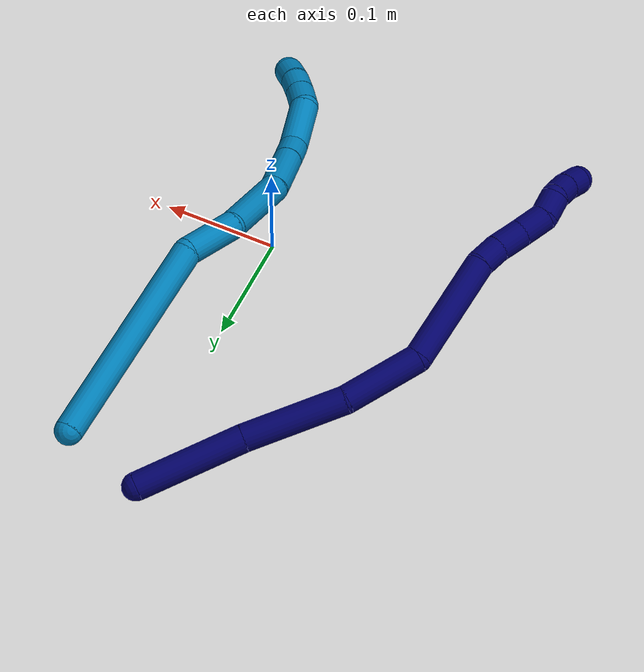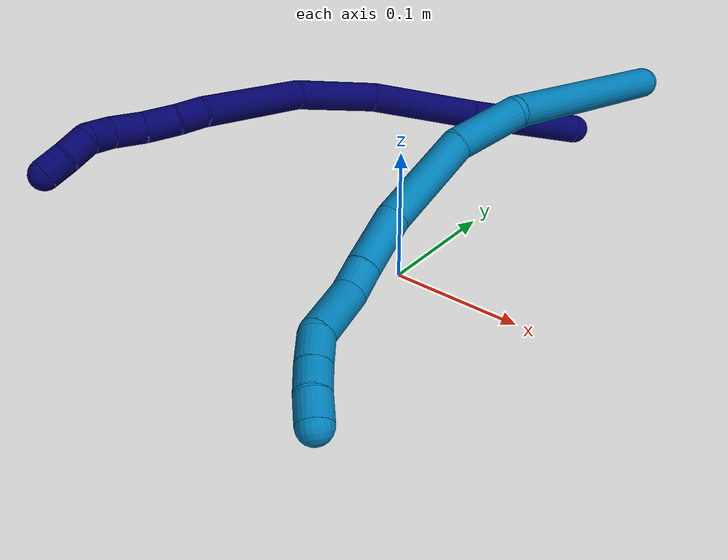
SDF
<sdf version="1.7">
 <world name="default">
  <model name="7">
   <static>0</static>
   <link name="7">
    <collision name="collision-cylinder-e_1_1_4">
     <pose>0.002723 0.010238 -0.048132 -2.93201 0.055274 -0.514031</pose>
     <geometry><cylinder><radius>0.0125</radius><length>0.098567</length></cylinder></geometry>
     <surface>
      <friction><ode><mu>1.16</mu><mu2>1.16</mu2><slip1>0</slip1><slip2>0</slip2></ode></friction>
      <contact><ode><kp>1e+06</kp><kd>1</kd><max_vel>0</max_vel><min_depth>0.001</min_depth></ode></contact>
     </surface>
    </collision>
    <visual name="visual-cylinder-e_1_1_4">
     <pose>0.002723 0.010238 -0.048132 -2.93201 0.055274 -0.514031</pose>
     <geometry><cylinder><radius>0.0125</radius><length>0.098567</length></cylinder></geometry>
     <material><ambient>0.003922 0 0.403922 1</ambient></material>
    </visual>
    <collision name="collision-cylinder-e_2_4_5">
     <pose>0.010992 0.031548 -0.140129 -2.89434 0.121991 -0.913626</pose>
     <geometry><cylinder><radius>0.0125</radius><length>0.09116</length></cylinder></geometry>
     <surface>
      <friction><ode><mu>1.16</mu><mu2>1.16</mu2><slip1>0</slip1><slip2>0</slip2></ode></friction>
      <contact><ode><kp>1e+06</kp><kd>1</kd><max_vel>0</max_vel><min_depth>0.001</min_depth></ode></contact>
     </surface>
    </collision>
    <visual name="visual-cylinder-e_2_4_5">
     <pose>0.010992 0.031548 -0.140129 -2.89434 0.121991 -0.913626</pose>
     <geometry><cylinder><radius>0.0125</radius><length>0.09116</length></cylinder></geometry>
     <material><ambient>0.003922 0 0.403922 1</ambient></material>
    </visual>
    <collision name="collision-cylinder-e_3_5_6">
     <pose>0.014828 0.045794 -0.219053 -3.05131 -0.048569 0.986751</pose>
     <geometry><cylinder><radius>0.0125</radius><length>0.070487</length></cylinder></geometry>
     <surface>
      <friction><ode><mu>1.16</mu><mu2>1.16</mu2><slip1>0</slip1><slip2>0</slip2></ode></friction>
      <contact><ode><kp>1e+06</kp><kd>1</kd><max_vel>0</max_vel><min_depth>0.001</min_depth></ode></contact>
     </surface>
    </collision>
    <visual name="visual-cylinder-e_3_5_6">
     <pose>0.014828 0.045794 -0.219053 -3.05131 -0.048569 0.986751</pose>
     <geometry><cylinder><radius>0.0125</radius><length>0.070487</length></cylinder></geometry>
     <material><ambient>0.003922 0 0.403922 1</ambient></material>
    </visual>
    <collision name="collision-cylinder-e_4_6_7">
     <pose>-0.010756 0.042576 -0.298646 2.99903 -0.487834 -2.5828</pose>
     <geometry><cylinder><radius>0.0125</radius><length>0.101864</length></cylinder></geometry>
     <surface>
      <friction><ode><mu>1.16</mu><mu2>1.16</mu2><slip1>0</slip1><slip2>0</slip2></ode></friction>
      <contact><ode><kp>1e+06</kp><kd>1</kd><max_vel>0</max_vel><min_depth>0.001</min_depth></ode></contact>
     </surface>
    </collision>
    <visual name="visual-cylinder-e_4_6_7">
     <pose>-0.010756 0.042576 -0.298646 2.99903 -0.487834 -2.5828</pose>
     <geometry><cylinder><radius>0.0125</radius><length>0.101864</length></cylinder></geometry>
     <material><ambient>0.003922 0 0.403922 1</ambient></material>
    </visual>
    <collision name="collision-cylinder-e_5_7_8">
     <pose>-0.037374 0.033606 -0.354044 2.90861 -0.241098 -1.60537</pose>
     <geometry><cylinder><radius>0.0125</radius><length>0.022995</length></cylinder></geometry>
     <surface>
      <friction><ode><mu>1.16</mu><mu2>1.16</mu2><slip1>0</slip1><slip2>0</slip2></ode></friction>
      <contact><ode><kp>1e+06</kp><kd>1</kd><max_vel>0</max_vel><min_depth>0.001</min_depth></ode></contact>
     </surface>
    </collision>
    <visual name="visual-cylinder-e_5_7_8">
     <pose>-0.037374 0.033606 -0.354044 2.90861 -0.241098 -1.60537</pose>
     <geometry><cylinder><radius>0.0125</radius><length>0.022995</length></cylinder></geometry>
     <material><ambient>0.003922 0 0.403922 1</ambient></material>
    </visual>
    <collision name="collision-cylinder-e_6_8_9">
     <pose>-0.041602 0.028866 -0.377793 2.97537 -0.113028 -1.19316</pose>
     <geometry><cylinder><radius>0.0125</radius><length>0.026299</length></cylinder></geometry>
     <surface>
      <friction><ode><mu>1.16</mu><mu2>1.16</mu2><slip1>0</slip1><slip2>0</slip2></ode></friction>
      <contact><ode><kp>1e+06</kp><kd>1</kd><max_vel>0</max_vel><min_depth>0.001</min_depth></ode></contact>
     </surface>
    </collision>
    <visual name="visual-cylinder-e_6_8_9">
     <pose>-0.041602 0.028866 -0.377793 2.97537 -0.113028 -1.19316</pose>
     <geometry><cylinder><radius>0.0125</radius><length>0.026299</length></cylinder></geometry>
     <material><ambient>0.003922 0 0.403922 1</ambient></material>
    </visual>
    <collision name="collision-cylinder-e_7_9_10">
     <pose>-0.044809 0.025545 -0.403669 3.05253 -0.131378 -1.95083</pose>
     <geometry><cylinder><radius>0.0125</radius><length>0.026311</length></cylinder></geometry>
     <surface>
      <friction><ode><mu>1.16</mu><mu2>1.16</mu2><slip1>0</slip1><slip2>0</slip2></ode></friction>
      <contact><ode><kp>1e+06</kp><kd>1</kd><max_vel>0</max_vel><min_depth>0.001</min_depth></ode></contact>
     </surface>
    </collision>
    <visual name="visual-cylinder-e_7_9_10">
     <pose>-0.044809 0.025545 -0.403669 3.05253 -0.131378 -1.95083</pose>
     <geometry><cylinder><radius>0.0125</radius><length>0.026311</length></cylinder></geometry>
     <material><ambient>0.003922 0 0.403922 1</ambient></material>
    </visual>
    <collision name="collision-cylinder-e_8_10_11">
     <pose>-0.052103 0.022326 -0.425487 2.91255 -0.551102 -2.36885</pose>
     <geometry><cylinder><radius>0.0125</radius><length>0.021279</length></cylinder></geometry>
     <surface>
      <friction><ode><mu>1.16</mu><mu2>1.16</mu2><slip1>0</slip1><slip2>0</slip2></ode></friction>
      <contact><ode><kp>1e+06</kp><kd>1</kd><max_vel>0</max_vel><min_depth>0.001</min_depth></ode></contact>
     </surface>
    </collision>
    <visual name="visual-cylinder-e_8_10_11">
     <pose>-0.052103 0.022326 -0.425487 2.91255 -0.551102 -2.36885</pose>
     <geometry><cylinder><radius>0.0125</radius><length>0.021279</length></cylinder></geometry>
     <material><ambient>0.003922 0 0.403922 1</ambient></material>
    </visual>
    <collision name="collision-cylinder-e_9_11_12">
     <pose>-0.059827 0.014 -0.442443 2.48466 -0.206698 -0.590847</pose>
     <geometry><cylinder><radius>0.0125</radius><length>0.020977</length></cylinder></geometry>
     <surface>
      <friction><ode><mu>1.16</mu><mu2>1.16</mu2><slip1>0</slip1><slip2>0</slip2></ode></friction>
      <contact><ode><kp>1e+06</kp><kd>1</kd><max_vel>0</max_vel><min_depth>0.001</min_depth></ode></contact>
     </surface>
    </collision>
    <visual name="visual-cylinder-e_9_11_12">
     <pose>-0.059827 0.014 -0.442443 2.48466 -0.206698 -0.590847</pose>
     <geometry><cylinder><radius>0.0125</radius><length>0.020977</length></cylinder></geometry>
     <material><ambient>0.003922 0 0.403922 1</ambient></material>
    </visual>
    <collision name="collision-cylinder-e_10_12_2">
     <pose>-0.062534 0.00204 -0.458812 2.53724 -0.055346 -0.17713</pose>
     <geometry><cylinder><radius>0.0125</radius><length>0.02006</length></cylinder></geometry>
     <surface>
      <friction><ode><mu>1.16</mu><mu2>1.16</mu2><slip1>0</slip1><slip2>0</slip2></ode></friction>
      <contact><ode><kp>1e+06</kp><kd>1</kd><max_vel>0</max_vel><min_depth>0.001</min_depth></ode></contact>
     </surface>
    </collision>
    <visual name="visual-cylinder-e_10_12_2">
     <pose>-0.062534 0.00204 -0.458812 2.53724 -0.055346 -0.17713</pose>
     <geometry><cylinder><radius>0.0125</radius><length>0.02006</length></cylinder></geometry>
     <material><ambient>0.003922 0 0.403922 1</ambient></material>
    </visual>
    <collision name="collision-sphere-2">
     <pose>-0.063089 -0.00365 -0.467053 0 -0 0</pose>
     <geometry><sphere><radius>0.0125</radius></sphere></geometry>
     <surface>
      <friction><ode><mu>1.16</mu><mu2>1.16</mu2><slip1>0</slip1><slip2>0</slip2></ode></friction>
      <contact><ode><kp>1e+06</kp><kd>1</kd><max_vel>0</max_vel><min_depth>0.001</min_depth></ode></contact>
     </surface>
    </collision>
    <visual name="visual-sphere-2">
     <pose>-0.063089 -0.00365 -0.467053 0 -0 0</pose>
     <geometry><sphere><radius>0.0125</radius></sphere></geometry>
     <material><ambient>0.003922 0 0.403922 1</ambient></material>
    </visual>
    <collision name="collision-sphere-12">
     <pose>-0.06198 0.007731 -0.450572 0 -0 0</pose>
     <geometry><sphere><radius>0.0125</radius></sphere></geometry>
     <surface>
      <friction><ode><mu>1.16</mu><mu2>1.16</mu2><slip1>0</slip1><slip2>0</slip2></ode></friction>
      <contact><ode><kp>1e+06</kp><kd>1</kd><max_vel>0</max_vel><min_depth>0.001</min_depth></ode></contact>
     </surface>
    </collision>
    <visual name="visual-sphere-12">
     <pose>-0.06198 0.007731 -0.450572 0 -0 0</pose>
     <geometry><sphere><radius>0.0125</radius></sphere></geometry>
     <material><ambient>0.003922 0 0.403922 1</ambient></material>
    </visual>
    <collision name="collision-sphere-11">
     <pose>-0.057675 0.020268 -0.434314 0 -0 0</pose>
     <geometry><sphere><radius>0.0125</radius></sphere></geometry>
     <surface>
      <friction><ode><mu>1.16</mu><mu2>1.16</mu2><slip1>0</slip1><slip2>0</slip2></ode></friction>
      <contact><ode><kp>1e+06</kp><kd>1</kd><max_vel>0</max_vel><min_depth>0.001</min_depth></ode></contact>
     </surface>
    </collision>
    <visual name="visual-sphere-11">
     <pose>-0.057675 0.020268 -0.434314 0 -0 0</pose>
     <geometry><sphere><radius>0.0125</radius></sphere></geometry>
     <material><ambient>0.003922 0 0.403922 1</ambient></material>
    </visual>
    <collision name="collision-sphere-10">
     <pose>-0.046532 0.024384 -0.416659 0 -0 0</pose>
     <geometry><sphere><radius>0.0125</radius></sphere></geometry>
     <surface>
      <friction><ode><mu>1.16</mu><mu2>1.16</mu2><slip1>0</slip1><slip2>0</slip2></ode></friction>
      <contact><ode><kp>1e+06</kp><kd>1</kd><max_vel>0</max_vel><min_depth>0.001</min_depth></ode></contact>
     </surface>
    </collision>
    <visual name="visual-sphere-10">
     <pose>-0.046532 0.024384 -0.416659 0 -0 0</pose>
     <geometry><sphere><radius>0.0125</radius></sphere></geometry>
     <material><ambient>0.003922 0 0.403922 1</ambient></material>
    </visual>
    <collision name="collision-sphere-9">
     <pose>-0.043085 0.026705 -0.390678 0 -0 0</pose>
     <geometry><sphere><radius>0.0125</radius></sphere></geometry>
     <surface>
      <friction><ode><mu>1.16</mu><mu2>1.16</mu2><slip1>0</slip1><slip2>0</slip2></ode></friction>
      <contact><ode><kp>1e+06</kp><kd>1</kd><max_vel>0</max_vel><min_depth>0.001</min_depth></ode></contact>
     </surface>
    </collision>
    <visual name="visual-sphere-9">
     <pose>-0.043085 0.026705 -0.390678 0 -0 0</pose>
     <geometry><sphere><radius>0.0125</radius></sphere></geometry>
     <material><ambient>0.003922 0 0.403922 1</ambient></material>
    </visual>
    <collision name="collision-sphere-4">
     <pose>0.005445 0.020476 -0.096263 0 -0 0</pose>
     <geometry><sphere><radius>0.0125</radius></sphere></geometry>
     <surface>
      <friction><ode><mu>1.16</mu><mu2>1.16</mu2><slip1>0</slip1><slip2>0</slip2></ode></friction>
      <contact><ode><kp>1e+06</kp><kd>1</kd><max_vel>0</max_vel><min_depth>0.001</min_depth></ode></contact>
     </surface>
    </collision>
    <visual name="visual-sphere-4">
     <pose>0.005445 0.020476 -0.096263 0 -0 0</pose>
     <geometry><sphere><radius>0.0125</radius></sphere></geometry>
     <material><ambient>0.003922 0 0.403922 1</ambient></material>
    </visual>
    <collision name="collision-sphere-1">
     <geometry><sphere><radius>0.0125</radius></sphere></geometry>
     <surface>
      <friction><ode><mu>1.16</mu><mu2>1.16</mu2><slip1>0</slip1><slip2>0</slip2></ode></friction>
      <contact><ode><kp>1e+06</kp><kd>1</kd><max_vel>0</max_vel><min_depth>0.001</min_depth></ode></contact>
     </surface>
    </collision>
    <visual name="visual-sphere-1">
     <geometry><sphere><radius>0.0125</radius></sphere></geometry>
     <material><ambient>0.003922 0 0.403922 1</ambient></material>
    </visual>
    <collision name="collision-sphere-8">
     <pose>-0.040119 0.031028 -0.364907 0 -0 0</pose>
     <geometry><sphere><radius>0.0125</radius></sphere></geometry>
     <surface>
      <friction><ode><mu>1.16</mu><mu2>1.16</mu2><slip1>0</slip1><slip2>0</slip2></ode></friction>
      <contact><ode><kp>1e+06</kp><kd>1</kd><max_vel>0</max_vel><min_depth>0.001</min_depth></ode></contact>
     </surface>
    </collision>
    <visual name="visual-sphere-8">
     <pose>-0.040119 0.031028 -0.364907 0 -0 0</pose>
     <geometry><sphere><radius>0.0125</radius></sphere></geometry>
     <material><ambient>0.003922 0 0.403922 1</ambient></material>
    </visual>
    <collision name="collision-sphere-5">
     <pose>0.016539 0.042621 -0.183994 0 -0 0</pose>
     <geometry><sphere><radius>0.0125</radius></sphere></geometry>
     <surface>
      <friction><ode><mu>1.16</mu><mu2>1.16</mu2><slip1>0</slip1><slip2>0</slip2></ode></friction>
      <contact><ode><kp>1e+06</kp><kd>1</kd><max_vel>0</max_vel><min_depth>0.001</min_depth></ode></contact>
     </surface>
    </collision>
    <visual name="visual-sphere-5">
     <pose>0.016539 0.042621 -0.183994 0 -0 0</pose>
     <geometry><sphere><radius>0.0125</radius></sphere></geometry>
     <material><ambient>0.003922 0 0.403922 1</ambient></material>
    </visual>
    <collision name="collision-sphere-6">
     <pose>0.013116 0.048968 -0.254112 0 -0 0</pose>
     <geometry><sphere><radius>0.0125</radius></sphere></geometry>
     <surface>
      <friction><ode><mu>1.16</mu><mu2>1.16</mu2><slip1>0</slip1><slip2>0</slip2></ode></friction>
      <contact><ode><kp>1e+06</kp><kd>1</kd><max_vel>0</max_vel><min_depth>0.001</min_depth></ode></contact>
     </surface>
    </collision>
    <visual name="visual-sphere-6">
     <pose>0.013116 0.048968 -0.254112 0 -0 0</pose>
     <geometry><sphere><radius>0.0125</radius></sphere></geometry>
     <material><ambient>0.003922 0 0.403922 1</ambient></material>
    </visual>
    <collision name="collision-sphere-7">
     <pose>-0.034629 0.036184 -0.343181 0 -0 0</pose>
     <geometry><sphere><radius>0.0125</radius></sphere></geometry>
     <surface>
      <friction><ode><mu>1.16</mu><mu2>1.16</mu2><slip1>0</slip1><slip2>0</slip2></ode></friction>
      <contact><ode><kp>1e+06</kp><kd>1</kd><max_vel>0</max_vel><min_depth>0.001</min_depth></ode></contact>
     </surface>
    </collision>
    <visual name="visual-sphere-7">
     <pose>-0.034629 0.036184 -0.343181 0 -0 0</pose>
     <geometry><sphere><radius>0.0125</radius></sphere></geometry>
     <material><ambient>0.003922 0 0.403922 1</ambient></material>
    </visual>
    <inertial>
     <pose>-0.011061 0.028927 -0.239233 0 -0 0</pose>
     <mass>0.5</mass>
     <inertia>
      <ixx>-6e-05</ixx>
      <ixy>0</ixy>
      <ixz>0</ixz>
      <iyy>-0.000165</iyy>
      <iyz>0</iyz>
      <izz>-2.4e-05</izz>
     </inertia>
    </inertial>
   </link>
   <pose>-0.00891 0.280056 0.012498 1.6349 0.486615 2.56307</pose>
  </model>
  <model name="9">
   <static>0</static>
   <link name="9">
    <collision name="collision-cylinder-e_1_1_4">
     <pose>-0.011659 -0.091787 -0.018961 1.7745 -0.123758 -0.151837</pose>
     <geometry><cylinder><radius>0.0125</radius><length>0.188895</length></cylinder></geometry>
     <surface>
      <friction><ode><mu>1.16</mu><mu2>1.16</mu2><slip1>0</slip1><slip2>0</slip2></ode></friction>
      <contact><ode><kp>1e+06</kp><kd>1</kd><max_vel>0</max_vel><min_depth>0.001</min_depth></ode></contact>
     </surface>
    </collision>
    <visual name="visual-cylinder-e_1_1_4">
     <pose>-0.011659 -0.091787 -0.018961 1.7745 -0.123758 -0.151837</pose>
     <geometry><cylinder><radius>0.0125</radius><length>0.188895</length></cylinder></geometry>
     <material><ambient>0 0.490196 0.709804 1</ambient></material>
    </visual>
    <collision name="collision-cylinder-e_2_4_5">
     <pose>-0.037225 -0.204385 -0.048286 2.03289 -0.539083 -0.839429</pose>
     <geometry><cylinder><radius>0.0125</radius><length>0.054182</length></cylinder></geometry>
     <surface>
      <friction><ode><mu>1.16</mu><mu2>1.16</mu2><slip1>0</slip1><slip2>0</slip2></ode></friction>
      <contact><ode><kp>1e+06</kp><kd>1</kd><max_vel>0</max_vel><min_depth>0.001</min_depth></ode></contact>
     </surface>
    </collision>
    <visual name="visual-cylinder-e_2_4_5">
     <pose>-0.037225 -0.204385 -0.048286 2.03289 -0.539083 -0.839429</pose>
     <geometry><cylinder><radius>0.0125</radius><length>0.054182</length></cylinder></geometry>
     <material><ambient>0 0.490196 0.709804 1</ambient></material>
    </visual>
    <collision name="collision-cylinder-e_3_5_6">
     <pose>-0.064881 -0.251718 -0.08362 2.32602 -0.360917 -0.799201</pose>
     <geometry><cylinder><radius>0.0125</radius><length>0.077869</length></cylinder></geometry>
     <surface>
      <friction><ode><mu>1.16</mu><mu2>1.16</mu2><slip1>0</slip1><slip2>0</slip2></ode></friction>
      <contact><ode><kp>1e+06</kp><kd>1</kd><max_vel>0</max_vel><min_depth>0.001</min_depth></ode></contact>
     </surface>
    </collision>
    <visual name="visual-cylinder-e_3_5_6">
     <pose>-0.064881 -0.251718 -0.08362 2.32602 -0.360917 -0.799201</pose>
     <geometry><cylinder><radius>0.0125</radius><length>0.077869</length></cylinder></geometry>
     <material><ambient>0 0.490196 0.709804 1</ambient></material>
    </visual>
    <collision name="collision-cylinder-e_4_6_7">
     <pose>-0.081513 -0.294491 -0.125158 2.36593 -0.123607 -0.300671</pose>
     <geometry><cylinder><radius>0.0125</radius><length>0.046774</length></cylinder></geometry>
     <surface>
      <friction><ode><mu>1.16</mu><mu2>1.16</mu2><slip1>0</slip1><slip2>0</slip2></ode></friction>
      <contact><ode><kp>1e+06</kp><kd>1</kd><max_vel>0</max_vel><min_depth>0.001</min_depth></ode></contact>
     </surface>
    </collision>
    <visual name="visual-cylinder-e_4_6_7">
     <pose>-0.081513 -0.294491 -0.125158 2.36593 -0.123607 -0.300671</pose>
     <geometry><cylinder><radius>0.0125</radius><length>0.046774</length></cylinder></geometry>
     <material><ambient>0 0.490196 0.709804 1</ambient></material>
    </visual>
    <collision name="collision-cylinder-e_5_7_8">
     <pose>-0.085787 -0.318235 -0.149995 2.40516 -0.123965 -0.318989</pose>
     <geometry><cylinder><radius>0.0125</radius><length>0.022488</length></cylinder></geometry>
     <surface>
      <friction><ode><mu>1.16</mu><mu2>1.16</mu2><slip1>0</slip1><slip2>0</slip2></ode></friction>
      <contact><ode><kp>1e+06</kp><kd>1</kd><max_vel>0</max_vel><min_depth>0.001</min_depth></ode></contact>
     </surface>
    </collision>
    <visual name="visual-cylinder-e_5_7_8">
     <pose>-0.085787 -0.318235 -0.149995 2.40516 -0.123965 -0.318989</pose>
     <geometry><cylinder><radius>0.0125</radius><length>0.022488</length></cylinder></geometry>
     <material><ambient>0 0.490196 0.709804 1</ambient></material>
    </visual>
    <collision name="collision-cylinder-e_6_8_9">
     <pose>-0.085506 -0.345579 -0.170333 2.11719 0.071821 0.127619</pose>
     <geometry><cylinder><radius>0.0125</radius><length>0.046584</length></cylinder></geometry>
     <surface>
      <friction><ode><mu>1.16</mu><mu2>1.16</mu2><slip1>0</slip1><slip2>0</slip2></ode></friction>
      <contact><ode><kp>1e+06</kp><kd>1</kd><max_vel>0</max_vel><min_depth>0.001</min_depth></ode></contact>
     </surface>
    </collision>
    <visual name="visual-cylinder-e_6_8_9">
     <pose>-0.085506 -0.345579 -0.170333 2.11719 0.071821 0.127619</pose>
     <geometry><cylinder><radius>0.0125</radius><length>0.046584</length></cylinder></geometry>
     <material><ambient>0 0.490196 0.709804 1</ambient></material>
    </visual>
    <collision name="collision-cylinder-e_7_9_10">
     <pose>-0.081234 -0.371468 -0.191818 2.57112 0.228462 0.745894</pose>
     <geometry><cylinder><radius>0.0125</radius><length>0.022966</length></cylinder></geometry>
     <surface>
      <friction><ode><mu>1.16</mu><mu2>1.16</mu2><slip1>0</slip1><slip2>0</slip2></ode></friction>
      <contact><ode><kp>1e+06</kp><kd>1</kd><max_vel>0</max_vel><min_depth>0.001</min_depth></ode></contact>
     </surface>
    </collision>
    <visual name="visual-cylinder-e_7_9_10">
     <pose>-0.081234 -0.371468 -0.191818 2.57112 0.228462 0.745894</pose>
     <geometry><cylinder><radius>0.0125</radius><length>0.022966</length></cylinder></geometry>
     <material><ambient>0 0.490196 0.709804 1</ambient></material>
    </visual>
    <collision name="collision-cylinder-e_8_10_11">
     <pose>-0.075793 -0.382532 -0.209462 2.59361 0.28649 0.948263</pose>
     <geometry><cylinder><radius>0.0125</radius><length>0.020103</length></cylinder></geometry>
     <surface>
      <friction><ode><mu>1.16</mu><mu2>1.16</mu2><slip1>0</slip1><slip2>0</slip2></ode></friction>
      <contact><ode><kp>1e+06</kp><kd>1</kd><max_vel>0</max_vel><min_depth>0.001</min_depth></ode></contact>
     </surface>
    </collision>
    <visual name="visual-cylinder-e_8_10_11">
     <pose>-0.075793 -0.382532 -0.209462 2.59361 0.28649 0.948263</pose>
     <geometry><cylinder><radius>0.0125</radius><length>0.020103</length></cylinder></geometry>
     <material><ambient>0 0.490196 0.709804 1</ambient></material>
    </visual>
    <collision name="collision-cylinder-e_9_11_2">
     <pose>-0.070293 -0.391314 -0.226646 2.74417 0.267323 1.1775</pose>
     <geometry><cylinder><radius>0.0125</radius><length>0.020138</length></cylinder></geometry>
     <surface>
      <friction><ode><mu>1.16</mu><mu2>1.16</mu2><slip1>0</slip1><slip2>0</slip2></ode></friction>
      <contact><ode><kp>1e+06</kp><kd>1</kd><max_vel>0</max_vel><min_depth>0.001</min_depth></ode></contact>
     </surface>
    </collision>
    <visual name="visual-cylinder-e_9_11_2">
     <pose>-0.070293 -0.391314 -0.226646 2.74417 0.267323 1.1775</pose>
     <geometry><cylinder><radius>0.0125</radius><length>0.020138</length></cylinder></geometry>
     <material><ambient>0 0.490196 0.709804 1</ambient></material>
    </visual>
    <collision name="collision-sphere-2">
     <pose>-0.067633 -0.395072 -0.235601 0 -0 0</pose>
     <geometry><sphere><radius>0.0125</radius></sphere></geometry>
     <surface>
      <friction><ode><mu>1.16</mu><mu2>1.16</mu2><slip1>0</slip1><slip2>0</slip2></ode></friction>
      <contact><ode><kp>1e+06</kp><kd>1</kd><max_vel>0</max_vel><min_depth>0.001</min_depth></ode></contact>
     </surface>
    </collision>
    <visual name="visual-sphere-2">
     <pose>-0.067633 -0.395072 -0.235601 0 -0 0</pose>
     <geometry><sphere><radius>0.0125</radius></sphere></geometry>
     <material><ambient>0 0.490196 0.709804 1</ambient></material>
    </visual>
    <collision name="collision-sphere-11">
     <pose>-0.072952 -0.387555 -0.217692 0 -0 0</pose>
     <geometry><sphere><radius>0.0125</radius></sphere></geometry>
     <surface>
      <friction><ode><mu>1.16</mu><mu2>1.16</mu2><slip1>0</slip1><slip2>0</slip2></ode></friction>
      <contact><ode><kp>1e+06</kp><kd>1</kd><max_vel>0</max_vel><min_depth>0.001</min_depth></ode></contact>
     </surface>
    </collision>
    <visual name="visual-sphere-11">
     <pose>-0.072952 -0.387555 -0.217692 0 -0 0</pose>
     <geometry><sphere><radius>0.0125</radius></sphere></geometry>
     <material><ambient>0 0.490196 0.709804 1</ambient></material>
    </visual>
    <collision name="collision-sphere-10">
     <pose>-0.078633 -0.377509 -0.201231 0 -0 0</pose>
     <geometry><sphere><radius>0.0125</radius></sphere></geometry>
     <surface>
      <friction><ode><mu>1.16</mu><mu2>1.16</mu2><slip1>0</slip1><slip2>0</slip2></ode></friction>
      <contact><ode><kp>1e+06</kp><kd>1</kd><max_vel>0</max_vel><min_depth>0.001</min_depth></ode></contact>
     </surface>
    </collision>
    <visual name="visual-sphere-10">
     <pose>-0.078633 -0.377509 -0.201231 0 -0 0</pose>
     <geometry><sphere><radius>0.0125</radius></sphere></geometry>
     <material><ambient>0 0.490196 0.709804 1</ambient></material>
    </visual>
    <collision name="collision-sphere-9">
     <pose>-0.083835 -0.365428 -0.182404 0 -0 0</pose>
     <geometry><sphere><radius>0.0125</radius></sphere></geometry>
     <surface>
      <friction><ode><mu>1.16</mu><mu2>1.16</mu2><slip1>0</slip1><slip2>0</slip2></ode></friction>
      <contact><ode><kp>1e+06</kp><kd>1</kd><max_vel>0</max_vel><min_depth>0.001</min_depth></ode></contact>
     </surface>
    </collision>
    <visual name="visual-sphere-9">
     <pose>-0.083835 -0.365428 -0.182404 0 -0 0</pose>
     <geometry><sphere><radius>0.0125</radius></sphere></geometry>
     <material><ambient>0 0.490196 0.709804 1</ambient></material>
    </visual>
    <collision name="collision-sphere-4">
     <pose>-0.023318 -0.183574 -0.037921 0 -0 0</pose>
     <geometry><sphere><radius>0.0125</radius></sphere></geometry>
     <surface>
      <friction><ode><mu>1.16</mu><mu2>1.16</mu2><slip1>0</slip1><slip2>0</slip2></ode></friction>
      <contact><ode><kp>1e+06</kp><kd>1</kd><max_vel>0</max_vel><min_depth>0.001</min_depth></ode></contact>
     </surface>
    </collision>
    <visual name="visual-sphere-4">
     <pose>-0.023318 -0.183574 -0.037921 0 -0 0</pose>
     <geometry><sphere><radius>0.0125</radius></sphere></geometry>
     <material><ambient>0 0.490196 0.709804 1</ambient></material>
    </visual>
    <collision name="collision-sphere-1">
     <geometry><sphere><radius>0.0125</radius></sphere></geometry>
     <surface>
      <friction><ode><mu>1.16</mu><mu2>1.16</mu2><slip1>0</slip1><slip2>0</slip2></ode></friction>
      <contact><ode><kp>1e+06</kp><kd>1</kd><max_vel>0</max_vel><min_depth>0.001</min_depth></ode></contact>
     </surface>
    </collision>
    <visual name="visual-sphere-1">
     <geometry><sphere><radius>0.0125</radius></sphere></geometry>
     <material><ambient>0 0.490196 0.709804 1</ambient></material>
    </visual>
    <collision name="collision-sphere-8">
     <pose>-0.087177 -0.32573 -0.158261 0 -0 0</pose>
     <geometry><sphere><radius>0.0125</radius></sphere></geometry>
     <surface>
      <friction><ode><mu>1.16</mu><mu2>1.16</mu2><slip1>0</slip1><slip2>0</slip2></ode></friction>
      <contact><ode><kp>1e+06</kp><kd>1</kd><max_vel>0</max_vel><min_depth>0.001</min_depth></ode></contact>
     </surface>
    </collision>
    <visual name="visual-sphere-8">
     <pose>-0.087177 -0.32573 -0.158261 0 -0 0</pose>
     <geometry><sphere><radius>0.0125</radius></sphere></geometry>
     <material><ambient>0 0.490196 0.709804 1</ambient></material>
    </visual>
    <collision name="collision-sphere-5">
     <pose>-0.051132 -0.225196 -0.058651 0 -0 0</pose>
     <geometry><sphere><radius>0.0125</radius></sphere></geometry>
     <surface>
      <friction><ode><mu>1.16</mu><mu2>1.16</mu2><slip1>0</slip1><slip2>0</slip2></ode></friction>
      <contact><ode><kp>1e+06</kp><kd>1</kd><max_vel>0</max_vel><min_depth>0.001</min_depth></ode></contact>
     </surface>
    </collision>
    <visual name="visual-sphere-5">
     <pose>-0.051132 -0.225196 -0.058651 0 -0 0</pose>
     <geometry><sphere><radius>0.0125</radius></sphere></geometry>
     <material><ambient>0 0.490196 0.709804 1</ambient></material>
    </visual>
    <collision name="collision-sphere-6">
     <pose>-0.07863 -0.27824 -0.108588 0 -0 0</pose>
     <geometry><sphere><radius>0.0125</radius></sphere></geometry>
     <surface>
      <friction><ode><mu>1.16</mu><mu2>1.16</mu2><slip1>0</slip1><slip2>0</slip2></ode></friction>
      <contact><ode><kp>1e+06</kp><kd>1</kd><max_vel>0</max_vel><min_depth>0.001</min_depth></ode></contact>
     </surface>
    </collision>
    <visual name="visual-sphere-6">
     <pose>-0.07863 -0.27824 -0.108588 0 -0 0</pose>
     <geometry><sphere><radius>0.0125</radius></sphere></geometry>
     <material><ambient>0 0.490196 0.709804 1</ambient></material>
    </visual>
    <collision name="collision-sphere-7">
     <pose>-0.084397 -0.310741 -0.141728 0 -0 0</pose>
     <geometry><sphere><radius>0.0125</radius></sphere></geometry>
     <surface>
      <friction><ode><mu>1.16</mu><mu2>1.16</mu2><slip1>0</slip1><slip2>0</slip2></ode></friction>
      <contact><ode><kp>1e+06</kp><kd>1</kd><max_vel>0</max_vel><min_depth>0.001</min_depth></ode></contact>
     </surface>
    </collision>
    <visual name="visual-sphere-7">
     <pose>-0.084397 -0.310741 -0.141728 0 -0 0</pose>
     <geometry><sphere><radius>0.0125</radius></sphere></geometry>
     <material><ambient>0 0.490196 0.709804 1</ambient></material>
    </visual>
    <inertial>
     <pose>-0.047603 -0.218289 -0.086103 0 -0 0</pose>
     <mass>0.5</mass>
     <inertia>
      <ixx>0.000492</ixx>
      <ixy>0</ixy>
      <ixz>0</ixz>
      <iyy>-0.000283</iyy>
      <iyz>0</iyz>
      <izz>0.000687</izz>
     </inertia>
    </inertial>
   </link>
   <pose>0.047221 0.287752 0.07053 -0.471104 -0.494443 0.141745</pose>
  </model>
 </world>
</sdf>
